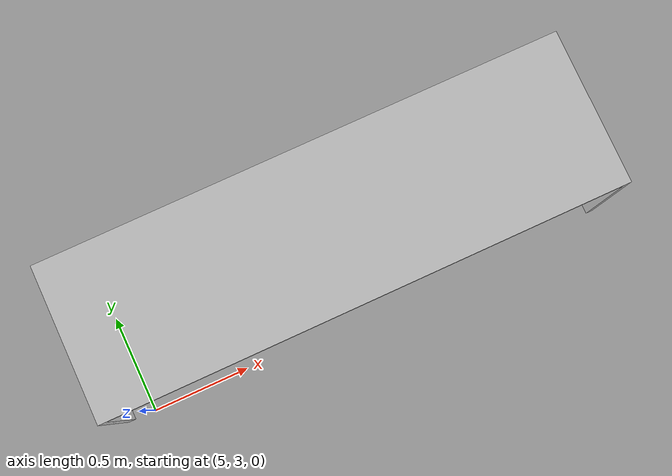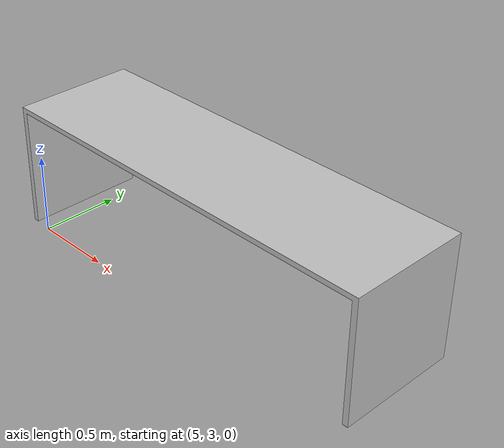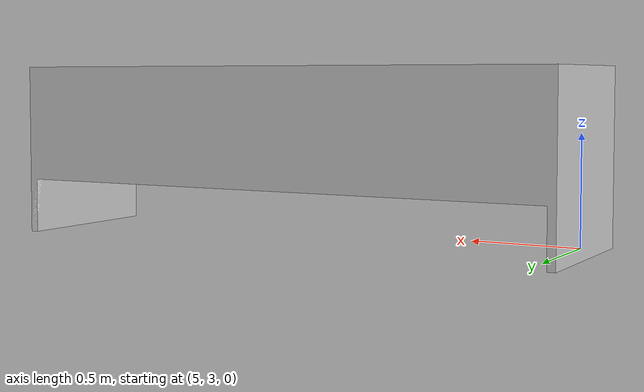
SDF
<?xml version='1.0'?>
<sdf version='1.5'>
  <model name='New_Cabinet'>
    <static>true</static>
    <link name="link">
      <pose>3 3 0 0 0 0</pose>
      <visual name="visual">
            <geometry>
                <mesh>
                    <uri>model://pc_desk/meshes/pc_desk.dae</uri>
                </mesh>
            </geometry>
          <material>
          <script>
               <uri>model://cabinet_test/materials/textures</uri>
               </script>
          </material>
        </visual>
        <collision name="collision">
            <geometry>
                <mesh>
                   <uri>model://pc_desk/meshes/pc_desk.dae</uri>
                </mesh>
            </geometry>
        </collision>
    </link>
  </model>
</sdf>
